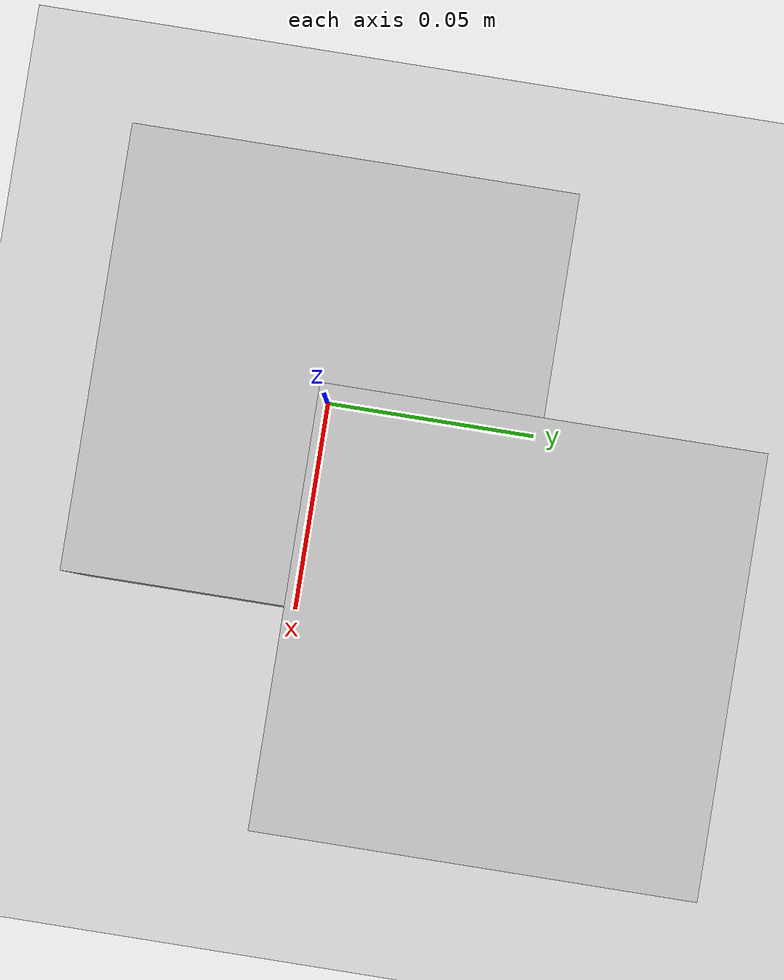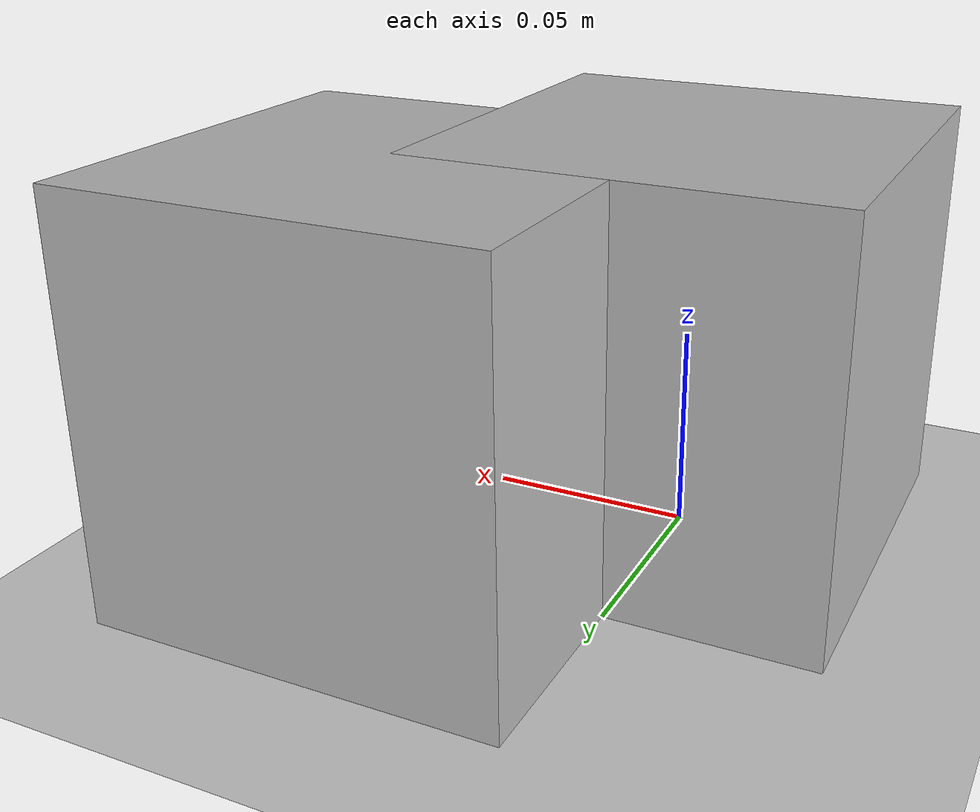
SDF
<?xml version="1.0"?>
<sdf version="1.6">
  <world name="spherical_coordinates">

    <!-- Processes the NavSat sensor -->
    <plugin
      filename="ignition-gazebo-navsat-system"
      name="ignition::gazebo::systems::NavSat">
    </plugin>

    <plugin
      filename="ignition-gazebo-imu-system"
      name="ignition::gazebo::systems::Imu">
    </plugin>

    <!-- Handles requests to update the spherical coordinates -->
    <plugin
      filename="ignition-gazebo-user-commands-system"
      name="ignition::gazebo::systems::UserCommands">
    </plugin>

    <!-- Populates the GUI with data from the server -->
    <plugin
      filename="ignition-gazebo-scene-broadcaster-system"
      name="ignition::gazebo::systems::SceneBroadcaster">
    </plugin>

    <!-- Processes pose commands -->
    <plugin
      filename="ignition-gazebo-physics-system"
      name="ignition::gazebo::systems::Physics">
    </plugin>

    <!-- Set the coordinates for the world origin -->
    <spherical_coordinates>
      <surface_model>EARTH_WGS84</surface_model>
      <world_frame_orientation>ENU</world_frame_orientation>
      <latitude_deg>43.986687</latitude_deg>
      <longitude_deg>8.202501</longitude_deg>
      <elevation>0</elevation>
      <heading_deg>0</heading_deg>
    </spherical_coordinates>

    <gui fullscreen="0">

      <!-- 3D scene -->
      <plugin filename="MinimalScene" name="3D View">
        <ignition-gui>
          <title>3D View</title>
          <property type="bool" key="showTitleBar">false</property>
          <property type="string" key="state">docked</property>
        </ignition-gui>

        <engine>ogre2</engine>
        <scene>scene</scene>
        <ambient_light>0.4 0.4 0.4</ambient_light>
        <background_color>0.8 0.8 0.8</background_color>
        <camera_pose>0 -6 8 0 0.8 1.56</camera_pose>
      </plugin>

      <!-- Plugins that add functionality to the scene -->
      <plugin filename="EntityContextMenuPlugin" name="Entity context menu">
        <ignition-gui>
          <property key="state" type="string">floating</property>
          <property key="width" type="double">5</property>
          <property key="height" type="double">5</property>
          <property key="showTitleBar" type="bool">false</property>
        </ignition-gui>
      </plugin>
      <plugin filename="GzSceneManager" name="Scene Manager">
        <ignition-gui>
          <property key="resizable" type="bool">false</property>
          <property key="width" type="double">5</property>
          <property key="height" type="double">5</property>
          <property key="state" type="string">floating</property>
          <property key="showTitleBar" type="bool">false</property>
        </ignition-gui>
      </plugin>
      <plugin filename="InteractiveViewControl" name="Interactive view control">
        <ignition-gui>
          <property key="resizable" type="bool">false</property>
          <property key="width" type="double">5</property>
          <property key="height" type="double">5</property>
          <property key="state" type="string">floating</property>
          <property key="showTitleBar" type="bool">false</property>
        </ignition-gui>
      </plugin>
      <plugin filename="CameraTracking" name="Camera Tracking">
        <ignition-gui>
          <property key="resizable" type="bool">false</property>
          <property key="width" type="double">5</property>
          <property key="height" type="double">5</property>
          <property key="state" type="string">floating</property>
          <property key="showTitleBar" type="bool">false</property>
        </ignition-gui>
      </plugin>
      <plugin filename="SelectEntities" name="Select Entities">
        <ignition-gui>
          <property key="resizable" type="bool">false</property>
          <property key="width" type="double">5</property>
          <property key="height" type="double">5</property>
          <property key="state" type="string">floating</property>
          <property key="showTitleBar" type="bool">false</property>
        </ignition-gui>
      </plugin>
      <plugin filename="Spawn" name="Spawn Entities">
        <ignition-gui>
          <property key="resizable" type="bool">false</property>
          <property key="width" type="double">5</property>
          <property key="height" type="double">5</property>
          <property key="state" type="string">floating</property>
          <property key="showTitleBar" type="bool">false</property>
        </ignition-gui>
      </plugin>
      <!-- World control -->
      <plugin filename="WorldControl" name="World control">
        <ignition-gui>
          <title>World control</title>
          <property type="bool" key="showTitleBar">false</property>
          <property type="bool" key="resizable">false</property>
          <property type="double" key="height">72</property>
          <property type="double" key="width">121</property>
          <property type="double" key="z">1</property>

          <property type="string" key="state">floating</property>
          <anchors target="3D View">
            <line own="left" target="left" />
            <line own="bottom" target="bottom" />
          </anchors>
        </ignition-gui>

        <play_pause>true</play_pause>
        <step>true</step>
        <start_paused>true</start_paused>
        <use_event>true</use_event>

      </plugin>

      <!-- World statistics -->
      <plugin filename="WorldStats" name="World stats">
        <ignition-gui>
          <title>World stats</title>
          <property type="bool" key="showTitleBar">false</property>
          <property type="bool" key="resizable">false</property>
          <property type="double" key="height">110</property>
          <property type="double" key="width">290</property>
          <property type="double" key="z">1</property>

          <property type="string" key="state">floating</property>
          <anchors target="3D View">
            <line own="right" target="right" />
            <line own="bottom" target="bottom" />
          </anchors>
        </ignition-gui>

        <sim_time>true</sim_time>
        <real_time>true</real_time>
        <real_time_factor>true</real_time_factor>
        <iterations>true</iterations>
      </plugin>

      <!-- Translate / rotate -->
      <plugin filename="TransformControl" name="Transform control">
        <ignition-gui>
          <property key="resizable" type="bool">false</property>
          <property key="width" type="double">250</property>
          <property key="height" type="double">50</property>
          <property key="state" type="string">floating</property>
          <property key="showTitleBar" type="bool">false</property>
          <property key="cardBackground" type="string">#777777</property>
        </ignition-gui>

        <!-- disable legacy features used to connect this plugin to GzScene3D -->
        <legacy>false</legacy>
      </plugin>

      <!-- Entity tree -->
      <plugin filename="EntityTree" name="Entity tree">
        <ignition-gui>
          <property type="string" key="state">docked_collapsed</property>
        </ignition-gui>
      </plugin>

      <!-- Inspector -->
      <plugin filename="ComponentInspector" name="Component inspector">
        <ignition-gui>
          <property type="string" key="state">docked</property>
        </ignition-gui>
      </plugin>

      <!-- Map -->
      <plugin filename="NavSatMap" name="NavSat Map">
        <ignition-gui>
          <title>NavSat Map</title>
          <property key="state" type="string">docked</property>
        </ignition-gui>
        <topic>/navsat</topic>
        <topic_picker>true</topic_picker>
      </plugin>
    </gui>

    <light type="directional" name="sun">
    </light>

    <model name="ground_plane">
      <static>true</static>
      <link name="link">
        <collision name="collision">
          <geometry>
            <plane>
              <normal>0 0 1</normal>
              <size>100 100</size>
            </plane>
          </geometry>
        </collision>
        <visual name="visual">
          <geometry>
            <plane>
              <normal>0 0 1</normal>
              <size>100 100</size>
            </plane>
          </geometry>
          <material>
            <ambient>0.8 0.8 0.8 1</ambient>
            <diffuse>0.8 0.8 0.8 1</diffuse>
            <specular>0.8 0.8 0.8 1</specular>
          </material>
        </visual>
      </link>
    </model>

    <model name="NavSat">
      <pose>0 0 0.05 0 0.0 0</pose>
      <link name="gnss_link">
        <inertial>
          <mass>0.1</mass>
          <inertia>
            <ixx>0.000166667</ixx>
            <iyy>0.000166667</iyy>
            <izz>0.000166667</izz>
          </inertia>
        </inertial>
        <collision name="collision">
          <geometry>
            <box>
              <size>0.1 0.1 0.1</size>
            </box>
          </geometry>
        </collision>
        <visual name="visual">
          <geometry>
            <box>
              <size>0.1 0.1 0.1</size>
            </box>
          </geometry>
        </visual>

        <sensor name="navsat" type="navsat">
          <always_on>1</always_on>
          <update_rate>1</update_rate>
          <topic>navsat</topic>
        </sensor>
      </link>

      <link name="imu_link">
        <pose>0.05 0.05 0.0 0 0 0</pose>
        <inertial>
          <mass>0.1</mass>
          <inertia>
            <ixx>0.000166667</ixx>
            <iyy>0.000166667</iyy>
            <izz>0.000166667</izz>
          </inertia>
        </inertial>
        <collision name="collision">
          <geometry>
            <box>
              <size>0.1 0.1 0.1</size>
            </box>
          </geometry>
        </collision>
        <visual name="visual">
          <geometry>
            <box>
              <size>0.1 0.1 0.1</size>
            </box>
          </geometry>
        </visual>

        <sensor name="imu" type="imu">
          <always_on>1</always_on>
          <update_rate>10</update_rate>
          <visualize>true</visualize>
          <topic>imu</topic>
          <enable_metrics>true</enable_metrics>
        </sensor>

      </link>

    </model>

  </world>
</sdf>
